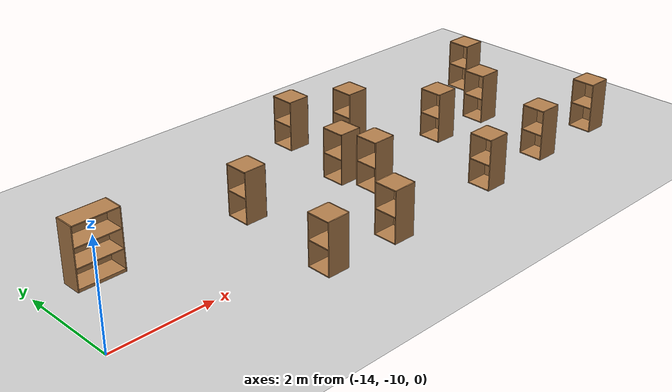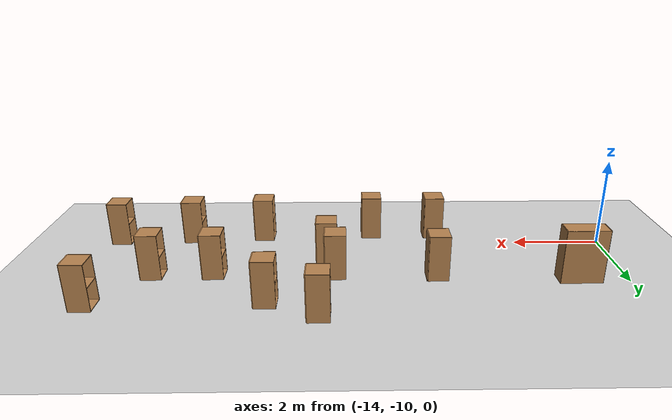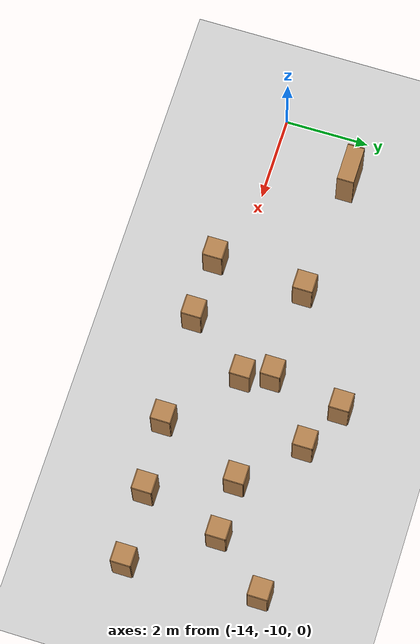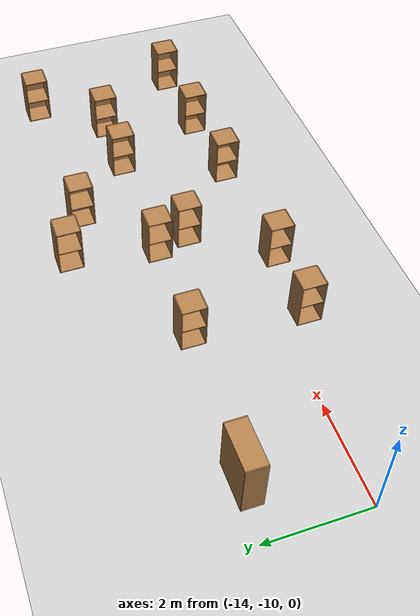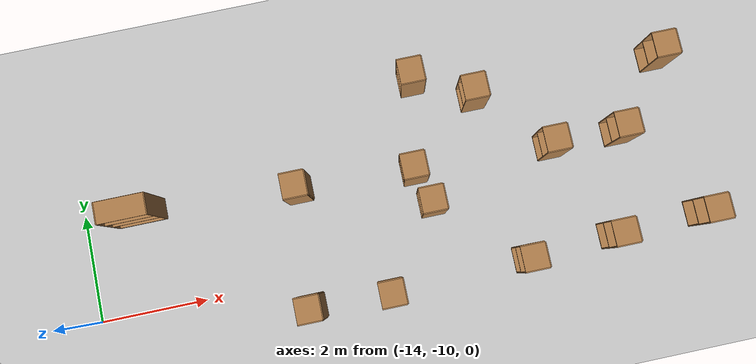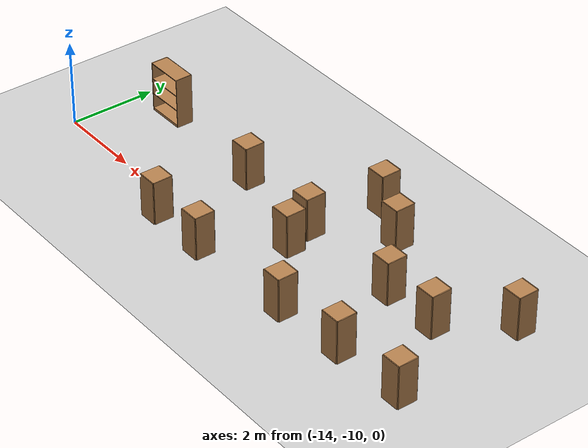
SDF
<sdf version="1.6">
 <world name="default">
  <model name="ground_plane">
   <static>1</static>
   <link name="link">
    <collision name="collision">
     <geometry><plane><normal>0 0 1</normal><size>100 100</size></plane></geometry>
     <surface><friction><ode><mu>100</mu><mu2>50</mu2></ode></friction></surface>
    </collision>
    <visual name="visual">
     <cast_shadows>0</cast_shadows>
     <geometry><plane><normal>0 0 1</normal><size>100 100</size></plane></geometry>
     <material>
      <script><uri>file://media/materials/scripts/gazebo.material</uri><name>Gazebo/Grey</name></script>
     </material>
    </visual>
   </link>
  </model>
  <model name="cabinet">
   <static>1</static>
   <link name="cabinet_bottom_plate">
    <inertial>
     <pose>0 0 -1 0 -0 0</pose>
     <inertia><ixx>2.05</ixx><ixy>0</ixy><ixz>0</ixz><iyy>2.05</iyy><iyz>0</iyz><izz>2.05</izz></inertia>
     <mass>25</mass>
    </inertial>
    <collision name="cabinet_bottom_plate_geom">
     <pose>0 0 0.01 0 -0 0</pose>
     <geometry><box><size>0.45 0.45 0.02</size></box></geometry>
    </collision>
    <visual name="cabinet_bottom_plate_geom_visual">
     <pose>0 0 0.01 0 -0 0</pose>
     <geometry><box><size>0.45 0.45 0.02</size></box></geometry>
     <material>
      <script><uri>file://media/materials/scripts/gazebo.material</uri><name>Gazebo/Wood</name></script>
     </material>
    </visual>
    <collision name="cabinet_bottom_plate_geom_cabinet_back_plate">
     <pose>0.235 0 0.51 0 -0 0</pose>
     <geometry><box><size>0.02 0.45 1.02</size></box></geometry>
    </collision>
    <visual name="cabinet_bottom_plate_geom_cabinet_back_plate_visual">
     <pose>0.235 0 0.51 0 -0 0</pose>
     <geometry><box><size>0.02 0.45 1.02</size></box></geometry>
     <material>
      <script><uri>file://media/materials/scripts/gazebo.material</uri><name>Gazebo/Wood</name></script>
     </material>
    </visual>
    <collision name="cabinet_bottom_plate_geom_cabinet_left_plate">
     <pose>0 0.235 0.51 0 -0 0</pose>
     <geometry><box><size>0.45 0.02 1.02</size></box></geometry>
    </collision>
    <visual name="cabinet_bottom_plate_geom_cabinet_left_plate_visual">
     <pose>0 0.235 0.51 0 -0 0</pose>
     <geometry><box><size>0.45 0.02 1.02</size></box></geometry>
     <material>
      <script><uri>file://media/materials/scripts/gazebo.material</uri><name>Gazebo/Wood</name></script>
     </material>
    </visual>
    <collision name="cabinet_bottom_plate_geom_cabinet_middle_plate">
     <pose>0 0 0.51 0 -0 0</pose>
     <geometry><box><size>0.45 0.45 0.02</size></box></geometry>
    </collision>
    <visual name="cabinet_bottom_plate_geom_cabinet_middle_plate_visual">
     <pose>0 0 0.51 0 -0 0</pose>
     <geometry><box><size>0.45 0.45 0.02</size></box></geometry>
     <material>
      <script><uri>file://media/materials/scripts/gazebo.material</uri><name>Gazebo/Wood</name></script>
     </material>
    </visual>
    <collision name="cabinet_bottom_plate_geom_cabinet_right_plate">
     <pose>0 -0.235 0.51 0 -0 0</pose>
     <geometry><box><size>0.45 0.02 1.02</size></box></geometry>
    </collision>
    <visual name="cabinet_bottom_plate_geom_cabinet_right_plate_visual">
     <pose>0 -0.235 0.51 0 -0 0</pose>
     <geometry><box><size>0.45 0.02 1.02</size></box></geometry>
     <material>
      <script><uri>file://media/materials/scripts/gazebo.material</uri><name>Gazebo/Wood</name></script>
     </material>
    </visual>
    <collision name="cabinet_bottom_plate_geom_cabinet_top_plate">
     <pose>0 0 1.01 0 -0 0</pose>
     <geometry><box><size>0.45 0.45 0.02</size></box></geometry>
    </collision>
    <visual name="cabinet_bottom_plate_geom_cabinet_top_plate_visual">
     <pose>0 0 1.01 0 -0 0</pose>
     <geometry><box><size>0.45 0.45 0.02</size></box></geometry>
     <material>
      <script><uri>file://media/materials/scripts/gazebo.material</uri><name>Gazebo/Wood</name></script>
     </material>
    </visual>
   </link>
   <pose>-10.0798 -10.5343 0 0 -0 0</pose>
  </model>
  <model name="cabinet_0">
   <static>1</static>
   <link name="cabinet_bottom_plate">
    <inertial>
     <pose>0 0 -1 0 -0 0</pose>
     <inertia><ixx>2.05</ixx><ixy>0</ixy><ixz>0</ixz><iyy>2.05</iyy><iyz>0</iyz><izz>2.05</izz></inertia>
     <mass>25</mass>
    </inertial>
    <collision name="cabinet_bottom_plate_geom">
     <pose>0 0 0.01 0 -0 0</pose>
     <geometry><box><size>0.45 0.45 0.02</size></box></geometry>
    </collision>
    <visual name="cabinet_bottom_plate_geom_visual">
     <pose>0 0 0.01 0 -0 0</pose>
     <geometry><box><size>0.45 0.45 0.02</size></box></geometry>
     <material>
      <script><uri>file://media/materials/scripts/gazebo.material</uri><name>Gazebo/Wood</name></script>
     </material>
    </visual>
    <collision name="cabinet_bottom_plate_geom_cabinet_back_plate">
     <pose>0.235 0 0.51 0 -0 0</pose>
     <geometry><box><size>0.02 0.45 1.02</size></box></geometry>
    </collision>
    <visual name="cabinet_bottom_plate_geom_cabinet_back_plate_visual">
     <pose>0.235 0 0.51 0 -0 0</pose>
     <geometry><box><size>0.02 0.45 1.02</size></box></geometry>
     <material>
      <script><uri>file://media/materials/scripts/gazebo.material</uri><name>Gazebo/Wood</name></script>
     </material>
    </visual>
    <collision name="cabinet_bottom_plate_geom_cabinet_left_plate">
     <pose>0 0.235 0.51 0 -0 0</pose>
     <geometry><box><size>0.45 0.02 1.02</size></box></geometry>
    </collision>
    <visual name="cabinet_bottom_plate_geom_cabinet_left_plate_visual">
     <pose>0 0.235 0.51 0 -0 0</pose>
     <geometry><box><size>0.45 0.02 1.02</size></box></geometry>
     <material>
      <script><uri>file://media/materials/scripts/gazebo.material</uri><name>Gazebo/Wood</name></script>
     </material>
    </visual>
    <collision name="cabinet_bottom_plate_geom_cabinet_middle_plate">
     <pose>0 0 0.51 0 -0 0</pose>
     <geometry><box><size>0.45 0.45 0.02</size></box></geometry>
    </collision>
    <visual name="cabinet_bottom_plate_geom_cabinet_middle_plate_visual">
     <pose>0 0 0.51 0 -0 0</pose>
     <geometry><box><size>0.45 0.45 0.02</size></box></geometry>
     <material>
      <script><uri>file://media/materials/scripts/gazebo.material</uri><name>Gazebo/Wood</name></script>
     </material>
    </visual>
    <collision name="cabinet_bottom_plate_geom_cabinet_right_plate">
     <pose>0 -0.235 0.51 0 -0 0</pose>
     <geometry><box><size>0.45 0.02 1.02</size></box></geometry>
    </collision>
    <visual name="cabinet_bottom_plate_geom_cabinet_right_plate_visual">
     <pose>0 -0.235 0.51 0 -0 0</pose>
     <geometry><box><size>0.45 0.02 1.02</size></box></geometry>
     <material>
      <script><uri>file://media/materials/scripts/gazebo.material</uri><name>Gazebo/Wood</name></script>
     </material>
    </visual>
    <collision name="cabinet_bottom_plate_geom_cabinet_top_plate">
     <pose>0 0 1.01 0 -0 0</pose>
     <geometry><box><size>0.45 0.45 0.02</size></box></geometry>
    </collision>
    <visual name="cabinet_bottom_plate_geom_cabinet_top_plate_visual">
     <pose>0 0 1.01 0 -0 0</pose>
     <geometry><box><size>0.45 0.45 0.02</size></box></geometry>
     <material>
      <script><uri>file://media/materials/scripts/gazebo.material</uri><name>Gazebo/Wood</name></script>
     </material>
    </visual>
   </link>
   <pose>-8.57907 -10.5675 0 0 -0 0</pose>
  </model>
  <model name="cabinet_1">
   <static>1</static>
   <link name="cabinet_bottom_plate">
    <inertial>
     <pose>0 0 -1 0 -0 0</pose>
     <inertia><ixx>2.05</ixx><ixy>0</ixy><ixz>0</ixz><iyy>2.05</iyy><iyz>0</iyz><izz>2.05</izz></inertia>
     <mass>25</mass>
    </inertial>
    <collision name="cabinet_bottom_plate_geom">
     <pose>0 0 0.01 0 -0 0</pose>
     <geometry><box><size>0.45 0.45 0.02</size></box></geometry>
    </collision>
    <visual name="cabinet_bottom_plate_geom_visual">
     <pose>0 0 0.01 0 -0 0</pose>
     <geometry><box><size>0.45 0.45 0.02</size></box></geometry>
     <material>
      <script><uri>file://media/materials/scripts/gazebo.material</uri><name>Gazebo/Wood</name></script>
     </material>
    </visual>
    <collision name="cabinet_bottom_plate_geom_cabinet_back_plate">
     <pose>0.235 0 0.51 0 -0 0</pose>
     <geometry><box><size>0.02 0.45 1.02</size></box></geometry>
    </collision>
    <visual name="cabinet_bottom_plate_geom_cabinet_back_plate_visual">
     <pose>0.235 0 0.51 0 -0 0</pose>
     <geometry><box><size>0.02 0.45 1.02</size></box></geometry>
     <material>
      <script><uri>file://media/materials/scripts/gazebo.material</uri><name>Gazebo/Wood</name></script>
     </material>
    </visual>
    <collision name="cabinet_bottom_plate_geom_cabinet_left_plate">
     <pose>0 0.235 0.51 0 -0 0</pose>
     <geometry><box><size>0.45 0.02 1.02</size></box></geometry>
    </collision>
    <visual name="cabinet_bottom_plate_geom_cabinet_left_plate_visual">
     <pose>0 0.235 0.51 0 -0 0</pose>
     <geometry><box><size>0.45 0.02 1.02</size></box></geometry>
     <material>
      <script><uri>file://media/materials/scripts/gazebo.material</uri><name>Gazebo/Wood</name></script>
     </material>
    </visual>
    <collision name="cabinet_bottom_plate_geom_cabinet_middle_plate">
     <pose>0 0 0.51 0 -0 0</pose>
     <geometry><box><size>0.45 0.45 0.02</size></box></geometry>
    </collision>
    <visual name="cabinet_bottom_plate_geom_cabinet_middle_plate_visual">
     <pose>0 0 0.51 0 -0 0</pose>
     <geometry><box><size>0.45 0.45 0.02</size></box></geometry>
     <material>
      <script><uri>file://media/materials/scripts/gazebo.material</uri><name>Gazebo/Wood</name></script>
     </material>
    </visual>
    <collision name="cabinet_bottom_plate_geom_cabinet_right_plate">
     <pose>0 -0.235 0.51 0 -0 0</pose>
     <geometry><box><size>0.45 0.02 1.02</size></box></geometry>
    </collision>
    <visual name="cabinet_bottom_plate_geom_cabinet_right_plate_visual">
     <pose>0 -0.235 0.51 0 -0 0</pose>
     <geometry><box><size>0.45 0.02 1.02</size></box></geometry>
     <material>
      <script><uri>file://media/materials/scripts/gazebo.material</uri><name>Gazebo/Wood</name></script>
     </material>
    </visual>
    <collision name="cabinet_bottom_plate_geom_cabinet_top_plate">
     <pose>0 0 1.01 0 -0 0</pose>
     <geometry><box><size>0.45 0.45 0.02</size></box></geometry>
    </collision>
    <visual name="cabinet_bottom_plate_geom_cabinet_top_plate_visual">
     <pose>0 0 1.01 0 -0 0</pose>
     <geometry><box><size>0.45 0.45 0.02</size></box></geometry>
     <material>
      <script><uri>file://media/materials/scripts/gazebo.material</uri><name>Gazebo/Wood</name></script>
     </material>
    </visual>
   </link>
   <pose>-7.53235 -9.08887 0 0 -0 0</pose>
  </model>
  <model name="cabinet_2">
   <static>1</static>
   <link name="cabinet_bottom_plate">
    <inertial>
     <pose>0 0 -1 0 -0 0</pose>
     <inertia><ixx>2.05</ixx><ixy>0</ixy><ixz>0</ixz><iyy>2.05</iyy><iyz>0</iyz><izz>2.05</izz></inertia>
     <mass>25</mass>
    </inertial>
    <collision name="cabinet_bottom_plate_geom">
     <pose>0 0 0.01 0 -0 0</pose>
     <geometry><box><size>0.45 0.45 0.02</size></box></geometry>
    </collision>
    <visual name="cabinet_bottom_plate_geom_visual">
     <pose>0 0 0.01 0 -0 0</pose>
     <geometry><box><size>0.45 0.45 0.02</size></box></geometry>
     <material>
      <script><uri>file://media/materials/scripts/gazebo.material</uri><name>Gazebo/Wood</name></script>
     </material>
    </visual>
    <collision name="cabinet_bottom_plate_geom_cabinet_back_plate">
     <pose>0.235 0 0.51 0 -0 0</pose>
     <geometry><box><size>0.02 0.45 1.02</size></box></geometry>
    </collision>
    <visual name="cabinet_bottom_plate_geom_cabinet_back_plate_visual">
     <pose>0.235 0 0.51 0 -0 0</pose>
     <geometry><box><size>0.02 0.45 1.02</size></box></geometry>
     <material>
      <script><uri>file://media/materials/scripts/gazebo.material</uri><name>Gazebo/Wood</name></script>
     </material>
    </visual>
    <collision name="cabinet_bottom_plate_geom_cabinet_left_plate">
     <pose>0 0.235 0.51 0 -0 0</pose>
     <geometry><box><size>0.45 0.02 1.02</size></box></geometry>
    </collision>
    <visual name="cabinet_bottom_plate_geom_cabinet_left_plate_visual">
     <pose>0 0.235 0.51 0 -0 0</pose>
     <geometry><box><size>0.45 0.02 1.02</size></box></geometry>
     <material>
      <script><uri>file://media/materials/scripts/gazebo.material</uri><name>Gazebo/Wood</name></script>
     </material>
    </visual>
    <collision name="cabinet_bottom_plate_geom_cabinet_middle_plate">
     <pose>0 0 0.51 0 -0 0</pose>
     <geometry><box><size>0.45 0.45 0.02</size></box></geometry>
    </collision>
    <visual name="cabinet_bottom_plate_geom_cabinet_middle_plate_visual">
     <pose>0 0 0.51 0 -0 0</pose>
     <geometry><box><size>0.45 0.45 0.02</size></box></geometry>
     <material>
      <script><uri>file://media/materials/scripts/gazebo.material</uri><name>Gazebo/Wood</name></script>
     </material>
    </visual>
    <collision name="cabinet_bottom_plate_geom_cabinet_right_plate">
     <pose>0 -0.235 0.51 0 -0 0</pose>
     <geometry><box><size>0.45 0.02 1.02</size></box></geometry>
    </collision>
    <visual name="cabinet_bottom_plate_geom_cabinet_right_plate_visual">
     <pose>0 -0.235 0.51 0 -0 0</pose>
     <geometry><box><size>0.45 0.02 1.02</size></box></geometry>
     <material>
      <script><uri>file://media/materials/scripts/gazebo.material</uri><name>Gazebo/Wood</name></script>
     </material>
    </visual>
    <collision name="cabinet_bottom_plate_geom_cabinet_top_plate">
     <pose>0 0 1.01 0 -0 0</pose>
     <geometry><box><size>0.45 0.45 0.02</size></box></geometry>
    </collision>
    <visual name="cabinet_bottom_plate_geom_cabinet_top_plate_visual">
     <pose>0 0 1.01 0 -0 0</pose>
     <geometry><box><size>0.45 0.45 0.02</size></box></geometry>
     <material>
      <script><uri>file://media/materials/scripts/gazebo.material</uri><name>Gazebo/Wood</name></script>
     </material>
    </visual>
   </link>
   <pose>-5.99781 -10.4652 0 0 -0 0</pose>
  </model>
  <model name="cabinet_3">
   <static>1</static>
   <link name="cabinet_bottom_plate">
    <inertial>
     <pose>0 0 -1 0 -0 0</pose>
     <inertia><ixx>2.05</ixx><ixy>0</ixy><ixz>0</ixz><iyy>2.05</iyy><iyz>0</iyz><izz>2.05</izz></inertia>
     <mass>25</mass>
    </inertial>
    <collision name="cabinet_bottom_plate_geom">
     <pose>0 0 0.01 0 -0 0</pose>
     <geometry><box><size>0.45 0.45 0.02</size></box></geometry>
    </collision>
    <visual name="cabinet_bottom_plate_geom_visual">
     <pose>0 0 0.01 0 -0 0</pose>
     <geometry><box><size>0.45 0.45 0.02</size></box></geometry>
     <material>
      <script><uri>file://media/materials/scripts/gazebo.material</uri><name>Gazebo/Wood</name></script>
     </material>
    </visual>
    <collision name="cabinet_bottom_plate_geom_cabinet_back_plate">
     <pose>0.235 0 0.51 0 -0 0</pose>
     <geometry><box><size>0.02 0.45 1.02</size></box></geometry>
    </collision>
    <visual name="cabinet_bottom_plate_geom_cabinet_back_plate_visual">
     <pose>0.235 0 0.51 0 -0 0</pose>
     <geometry><box><size>0.02 0.45 1.02</size></box></geometry>
     <material>
      <script><uri>file://media/materials/scripts/gazebo.material</uri><name>Gazebo/Wood</name></script>
     </material>
    </visual>
    <collision name="cabinet_bottom_plate_geom_cabinet_left_plate">
     <pose>0 0.235 0.51 0 -0 0</pose>
     <geometry><box><size>0.45 0.02 1.02</size></box></geometry>
    </collision>
    <visual name="cabinet_bottom_plate_geom_cabinet_left_plate_visual">
     <pose>0 0.235 0.51 0 -0 0</pose>
     <geometry><box><size>0.45 0.02 1.02</size></box></geometry>
     <material>
      <script><uri>file://media/materials/scripts/gazebo.material</uri><name>Gazebo/Wood</name></script>
     </material>
    </visual>
    <collision name="cabinet_bottom_plate_geom_cabinet_middle_plate">
     <pose>0 0 0.51 0 -0 0</pose>
     <geometry><box><size>0.45 0.45 0.02</size></box></geometry>
    </collision>
    <visual name="cabinet_bottom_plate_geom_cabinet_middle_plate_visual">
     <pose>0 0 0.51 0 -0 0</pose>
     <geometry><box><size>0.45 0.45 0.02</size></box></geometry>
     <material>
      <script><uri>file://media/materials/scripts/gazebo.material</uri><name>Gazebo/Wood</name></script>
     </material>
    </visual>
    <collision name="cabinet_bottom_plate_geom_cabinet_right_plate">
     <pose>0 -0.235 0.51 0 -0 0</pose>
     <geometry><box><size>0.45 0.02 1.02</size></box></geometry>
    </collision>
    <visual name="cabinet_bottom_plate_geom_cabinet_right_plate_visual">
     <pose>0 -0.235 0.51 0 -0 0</pose>
     <geometry><box><size>0.45 0.02 1.02</size></box></geometry>
     <material>
      <script><uri>file://media/materials/scripts/gazebo.material</uri><name>Gazebo/Wood</name></script>
     </material>
    </visual>
    <collision name="cabinet_bottom_plate_geom_cabinet_top_plate">
     <pose>0 0 1.01 0 -0 0</pose>
     <geometry><box><size>0.45 0.45 0.02</size></box></geometry>
    </collision>
    <visual name="cabinet_bottom_plate_geom_cabinet_top_plate_visual">
     <pose>0 0 1.01 0 -0 0</pose>
     <geometry><box><size>0.45 0.45 0.02</size></box></geometry>
     <material>
      <script><uri>file://media/materials/scripts/gazebo.material</uri><name>Gazebo/Wood</name></script>
     </material>
    </visual>
   </link>
   <pose>-4.32371 -10.3615 0 0 -0 0</pose>
  </model>
  <model name="cabinet_4">
   <static>1</static>
   <link name="cabinet_bottom_plate">
    <inertial>
     <pose>0 0 -1 0 -0 0</pose>
     <inertia><ixx>2.05</ixx><ixy>0</ixy><ixz>0</ixz><iyy>2.05</iyy><iyz>0</iyz><izz>2.05</izz></inertia>
     <mass>25</mass>
    </inertial>
    <collision name="cabinet_bottom_plate_geom">
     <pose>0 0 0.01 0 -0 0</pose>
     <geometry><box><size>0.45 0.45 0.02</size></box></geometry>
    </collision>
    <visual name="cabinet_bottom_plate_geom_visual">
     <pose>0 0 0.01 0 -0 0</pose>
     <geometry><box><size>0.45 0.45 0.02</size></box></geometry>
     <material>
      <script><uri>file://media/materials/scripts/gazebo.material</uri><name>Gazebo/Wood</name></script>
     </material>
    </visual>
    <collision name="cabinet_bottom_plate_geom_cabinet_back_plate">
     <pose>0.235 0 0.51 0 -0 0</pose>
     <geometry><box><size>0.02 0.45 1.02</size></box></geometry>
    </collision>
    <visual name="cabinet_bottom_plate_geom_cabinet_back_plate_visual">
     <pose>0.235 0 0.51 0 -0 0</pose>
     <geometry><box><size>0.02 0.45 1.02</size></box></geometry>
     <material>
      <script><uri>file://media/materials/scripts/gazebo.material</uri><name>Gazebo/Wood</name></script>
     </material>
    </visual>
    <collision name="cabinet_bottom_plate_geom_cabinet_left_plate">
     <pose>0 0.235 0.51 0 -0 0</pose>
     <geometry><box><size>0.45 0.02 1.02</size></box></geometry>
    </collision>
    <visual name="cabinet_bottom_plate_geom_cabinet_left_plate_visual">
     <pose>0 0.235 0.51 0 -0 0</pose>
     <geometry><box><size>0.45 0.02 1.02</size></box></geometry>
     <material>
      <script><uri>file://media/materials/scripts/gazebo.material</uri><name>Gazebo/Wood</name></script>
     </material>
    </visual>
    <collision name="cabinet_bottom_plate_geom_cabinet_middle_plate">
     <pose>0 0 0.51 0 -0 0</pose>
     <geometry><box><size>0.45 0.45 0.02</size></box></geometry>
    </collision>
    <visual name="cabinet_bottom_plate_geom_cabinet_middle_plate_visual">
     <pose>0 0 0.51 0 -0 0</pose>
     <geometry><box><size>0.45 0.45 0.02</size></box></geometry>
     <material>
      <script><uri>file://media/materials/scripts/gazebo.material</uri><name>Gazebo/Wood</name></script>
     </material>
    </visual>
    <collision name="cabinet_bottom_plate_geom_cabinet_right_plate">
     <pose>0 -0.235 0.51 0 -0 0</pose>
     <geometry><box><size>0.45 0.02 1.02</size></box></geometry>
    </collision>
    <visual name="cabinet_bottom_plate_geom_cabinet_right_plate_visual">
     <pose>0 -0.235 0.51 0 -0 0</pose>
     <geometry><box><size>0.45 0.02 1.02</size></box></geometry>
     <material>
      <script><uri>file://media/materials/scripts/gazebo.material</uri><name>Gazebo/Wood</name></script>
     </material>
    </visual>
    <collision name="cabinet_bottom_plate_geom_cabinet_top_plate">
     <pose>0 0 1.01 0 -0 0</pose>
     <geometry><box><size>0.45 0.45 0.02</size></box></geometry>
    </collision>
    <visual name="cabinet_bottom_plate_geom_cabinet_top_plate_visual">
     <pose>0 0 1.01 0 -0 0</pose>
     <geometry><box><size>0.45 0.45 0.02</size></box></geometry>
     <material>
      <script><uri>file://media/materials/scripts/gazebo.material</uri><name>Gazebo/Wood</name></script>
     </material>
    </visual>
   </link>
   <pose>-2.61379 -10.2875 0 0 -0 0</pose>
  </model>
  <model name="cabinet_10">
   <static>1</static>
   <link name="cabinet_bottom_plate">
    <inertial>
     <pose>0 0 -1 0 -0 0</pose>
     <inertia><ixx>2.05</ixx><ixy>0</ixy><ixz>0</ixz><iyy>2.05</iyy><iyz>0</iyz><izz>2.05</izz></inertia>
     <mass>25</mass>
    </inertial>
    <collision name="cabinet_bottom_plate_geom">
     <pose>0 0 0.01 0 -0 0</pose>
     <geometry><box><size>0.45 0.45 0.02</size></box></geometry>
    </collision>
    <visual name="cabinet_bottom_plate_geom_visual">
     <pose>0 0 0.01 0 -0 0</pose>
     <geometry><box><size>0.45 0.45 0.02</size></box></geometry>
     <material>
      <script><uri>file://media/materials/scripts/gazebo.material</uri><name>Gazebo/Wood</name></script>
     </material>
    </visual>
    <collision name="cabinet_bottom_plate_geom_cabinet_back_plate">
     <pose>0.235 0 0.51 0 -0 0</pose>
     <geometry><box><size>0.02 0.45 1.02</size></box></geometry>
    </collision>
    <visual name="cabinet_bottom_plate_geom_cabinet_back_plate_visual">
     <pose>0.235 0 0.51 0 -0 0</pose>
     <geometry><box><size>0.02 0.45 1.02</size></box></geometry>
     <material>
      <script><uri>file://media/materials/scripts/gazebo.material</uri><name>Gazebo/Wood</name></script>
     </material>
    </visual>
    <collision name="cabinet_bottom_plate_geom_cabinet_left_plate">
     <pose>0 0.235 0.51 0 -0 0</pose>
     <geometry><box><size>0.45 0.02 1.02</size></box></geometry>
    </collision>
    <visual name="cabinet_bottom_plate_geom_cabinet_left_plate_visual">
     <pose>0 0.235 0.51 0 -0 0</pose>
     <geometry><box><size>0.45 0.02 1.02</size></box></geometry>
     <material>
      <script><uri>file://media/materials/scripts/gazebo.material</uri><name>Gazebo/Wood</name></script>
     </material>
    </visual>
    <collision name="cabinet_bottom_plate_geom_cabinet_middle_plate">
     <pose>0 0 0.51 0 -0 0</pose>
     <geometry><box><size>0.45 0.45 0.02</size></box></geometry>
    </collision>
    <visual name="cabinet_bottom_plate_geom_cabinet_middle_plate_visual">
     <pose>0 0 0.51 0 -0 0</pose>
     <geometry><box><size>0.45 0.45 0.02</size></box></geometry>
     <material>
      <script><uri>file://media/materials/scripts/gazebo.material</uri><name>Gazebo/Wood</name></script>
     </material>
    </visual>
    <collision name="cabinet_bottom_plate_geom_cabinet_right_plate">
     <pose>0 -0.235 0.51 0 -0 0</pose>
     <geometry><box><size>0.45 0.02 1.02</size></box></geometry>
    </collision>
    <visual name="cabinet_bottom_plate_geom_cabinet_right_plate_visual">
     <pose>0 -0.235 0.51 0 -0 0</pose>
     <geometry><box><size>0.45 0.02 1.02</size></box></geometry>
     <material>
      <script><uri>file://media/materials/scripts/gazebo.material</uri><name>Gazebo/Wood</name></script>
     </material>
    </visual>
    <collision name="cabinet_bottom_plate_geom_cabinet_top_plate">
     <pose>0 0 1.01 0 -0 0</pose>
     <geometry><box><size>0.45 0.45 0.02</size></box></geometry>
    </collision>
    <visual name="cabinet_bottom_plate_geom_cabinet_top_plate_visual">
     <pose>0 0 1.01 0 -0 0</pose>
     <geometry><box><size>0.45 0.45 0.02</size></box></geometry>
     <material>
      <script><uri>file://media/materials/scripts/gazebo.material</uri><name>Gazebo/Wood</name></script>
     </material>
    </visual>
   </link>
   <pose>-9.91816 -8.32824 0 0 -0 0</pose>
  </model>
  <model name="cabinet_11">
   <static>1</static>
   <link name="cabinet_bottom_plate">
    <inertial>
     <pose>0 0 -1 0 -0 0</pose>
     <inertia><ixx>2.05</ixx><ixy>0</ixy><ixz>0</ixz><iyy>2.05</iyy><iyz>0</iyz><izz>2.05</izz></inertia>
     <mass>25</mass>
    </inertial>
    <collision name="cabinet_bottom_plate_geom">
     <pose>0 0 0.01 0 -0 0</pose>
     <geometry><box><size>0.45 0.45 0.02</size></box></geometry>
    </collision>
    <visual name="cabinet_bottom_plate_geom_visual">
     <pose>0 0 0.01 0 -0 0</pose>
     <geometry><box><size>0.45 0.45 0.02</size></box></geometry>
     <material>
      <script><uri>file://media/materials/scripts/gazebo.material</uri><name>Gazebo/Wood</name></script>
     </material>
    </visual>
    <collision name="cabinet_bottom_plate_geom_cabinet_back_plate">
     <pose>0.235 0 0.51 0 -0 0</pose>
     <geometry><box><size>0.02 0.45 1.02</size></box></geometry>
    </collision>
    <visual name="cabinet_bottom_plate_geom_cabinet_back_plate_visual">
     <pose>0.235 0 0.51 0 -0 0</pose>
     <geometry><box><size>0.02 0.45 1.02</size></box></geometry>
     <material>
      <script><uri>file://media/materials/scripts/gazebo.material</uri><name>Gazebo/Wood</name></script>
     </material>
    </visual>
    <collision name="cabinet_bottom_plate_geom_cabinet_left_plate">
     <pose>0 0.235 0.51 0 -0 0</pose>
     <geometry><box><size>0.45 0.02 1.02</size></box></geometry>
    </collision>
    <visual name="cabinet_bottom_plate_geom_cabinet_left_plate_visual">
     <pose>0 0.235 0.51 0 -0 0</pose>
     <geometry><box><size>0.45 0.02 1.02</size></box></geometry>
     <material>
      <script><uri>file://media/materials/scripts/gazebo.material</uri><name>Gazebo/Wood</name></script>
     </material>
    </visual>
    <collision name="cabinet_bottom_plate_geom_cabinet_middle_plate">
     <pose>0 0 0.51 0 -0 0</pose>
     <geometry><box><size>0.45 0.45 0.02</size></box></geometry>
    </collision>
    <visual name="cabinet_bottom_plate_geom_cabinet_middle_plate_visual">
     <pose>0 0 0.51 0 -0 0</pose>
     <geometry><box><size>0.45 0.45 0.02</size></box></geometry>
     <material>
      <script><uri>file://media/materials/scripts/gazebo.material</uri><name>Gazebo/Wood</name></script>
     </material>
    </visual>
    <collision name="cabinet_bottom_plate_geom_cabinet_right_plate">
     <pose>0 -0.235 0.51 0 -0 0</pose>
     <geometry><box><size>0.45 0.02 1.02</size></box></geometry>
    </collision>
    <visual name="cabinet_bottom_plate_geom_cabinet_right_plate_visual">
     <pose>0 -0.235 0.51 0 -0 0</pose>
     <geometry><box><size>0.45 0.02 1.02</size></box></geometry>
     <material>
      <script><uri>file://media/materials/scripts/gazebo.material</uri><name>Gazebo/Wood</name></script>
     </material>
    </visual>
    <collision name="cabinet_bottom_plate_geom_cabinet_top_plate">
     <pose>0 0 1.01 0 -0 0</pose>
     <geometry><box><size>0.45 0.45 0.02</size></box></geometry>
    </collision>
    <visual name="cabinet_bottom_plate_geom_cabinet_top_plate_visual">
     <pose>0 0 1.01 0 -0 0</pose>
     <geometry><box><size>0.45 0.45 0.02</size></box></geometry>
     <material>
      <script><uri>file://media/materials/scripts/gazebo.material</uri><name>Gazebo/Wood</name></script>
     </material>
    </visual>
   </link>
   <pose>-7.73421 -8.42814 0 0 -0 0</pose>
  </model>
  <model name="cabinet_12">
   <static>1</static>
   <link name="cabinet_bottom_plate">
    <inertial>
     <pose>0 0 -1 0 -0 0</pose>
     <inertia><ixx>2.05</ixx><ixy>0</ixy><ixz>0</ixz><iyy>2.05</iyy><iyz>0</iyz><izz>2.05</izz></inertia>
     <mass>25</mass>
    </inertial>
    <collision name="cabinet_bottom_plate_geom">
     <pose>0 0 0.01 0 -0 0</pose>
     <geometry><box><size>0.45 0.45 0.02</size></box></geometry>
    </collision>
    <visual name="cabinet_bottom_plate_geom_visual">
     <pose>0 0 0.01 0 -0 0</pose>
     <geometry><box><size>0.45 0.45 0.02</size></box></geometry>
     <material>
      <script><uri>file://media/materials/scripts/gazebo.material</uri><name>Gazebo/Wood</name></script>
     </material>
    </visual>
    <collision name="cabinet_bottom_plate_geom_cabinet_back_plate">
     <pose>0.235 0 0.51 0 -0 0</pose>
     <geometry><box><size>0.02 0.45 1.02</size></box></geometry>
    </collision>
    <visual name="cabinet_bottom_plate_geom_cabinet_back_plate_visual">
     <pose>0.235 0 0.51 0 -0 0</pose>
     <geometry><box><size>0.02 0.45 1.02</size></box></geometry>
     <material>
      <script><uri>file://media/materials/scripts/gazebo.material</uri><name>Gazebo/Wood</name></script>
     </material>
    </visual>
    <collision name="cabinet_bottom_plate_geom_cabinet_left_plate">
     <pose>0 0.235 0.51 0 -0 0</pose>
     <geometry><box><size>0.45 0.02 1.02</size></box></geometry>
    </collision>
    <visual name="cabinet_bottom_plate_geom_cabinet_left_plate_visual">
     <pose>0 0.235 0.51 0 -0 0</pose>
     <geometry><box><size>0.45 0.02 1.02</size></box></geometry>
     <material>
      <script><uri>file://media/materials/scripts/gazebo.material</uri><name>Gazebo/Wood</name></script>
     </material>
    </visual>
    <collision name="cabinet_bottom_plate_geom_cabinet_middle_plate">
     <pose>0 0 0.51 0 -0 0</pose>
     <geometry><box><size>0.45 0.45 0.02</size></box></geometry>
    </collision>
    <visual name="cabinet_bottom_plate_geom_cabinet_middle_plate_visual">
     <pose>0 0 0.51 0 -0 0</pose>
     <geometry><box><size>0.45 0.45 0.02</size></box></geometry>
     <material>
      <script><uri>file://media/materials/scripts/gazebo.material</uri><name>Gazebo/Wood</name></script>
     </material>
    </visual>
    <collision name="cabinet_bottom_plate_geom_cabinet_right_plate">
     <pose>0 -0.235 0.51 0 -0 0</pose>
     <geometry><box><size>0.45 0.02 1.02</size></box></geometry>
    </collision>
    <visual name="cabinet_bottom_plate_geom_cabinet_right_plate_visual">
     <pose>0 -0.235 0.51 0 -0 0</pose>
     <geometry><box><size>0.45 0.02 1.02</size></box></geometry>
     <material>
      <script><uri>file://media/materials/scripts/gazebo.material</uri><name>Gazebo/Wood</name></script>
     </material>
    </visual>
    <collision name="cabinet_bottom_plate_geom_cabinet_top_plate">
     <pose>0 0 1.01 0 -0 0</pose>
     <geometry><box><size>0.45 0.45 0.02</size></box></geometry>
    </collision>
    <visual name="cabinet_bottom_plate_geom_cabinet_top_plate_visual">
     <pose>0 0 1.01 0 -0 0</pose>
     <geometry><box><size>0.45 0.45 0.02</size></box></geometry>
     <material>
      <script><uri>file://media/materials/scripts/gazebo.material</uri><name>Gazebo/Wood</name></script>
     </material>
    </visual>
   </link>
   <pose>-6.35477 -7.24797 0 0 -0 0</pose>
  </model>
  <model name="cabinet_13">
   <static>1</static>
   <link name="cabinet_bottom_plate">
    <inertial>
     <pose>0 0 -1 0 -0 0</pose>
     <inertia><ixx>2.05</ixx><ixy>0</ixy><ixz>0</ixz><iyy>2.05</iyy><iyz>0</iyz><izz>2.05</izz></inertia>
     <mass>25</mass>
    </inertial>
    <collision name="cabinet_bottom_plate_geom">
     <pose>0 0 0.01 0 -0 0</pose>
     <geometry><box><size>0.45 0.45 0.02</size></box></geometry>
    </collision>
    <visual name="cabinet_bottom_plate_geom_visual">
     <pose>0 0 0.01 0 -0 0</pose>
     <geometry><box><size>0.45 0.45 0.02</size></box></geometry>
     <material>
      <script><uri>file://media/materials/scripts/gazebo.material</uri><name>Gazebo/Wood</name></script>
     </material>
    </visual>
    <collision name="cabinet_bottom_plate_geom_cabinet_back_plate">
     <pose>0.235 0 0.51 0 -0 0</pose>
     <geometry><box><size>0.02 0.45 1.02</size></box></geometry>
    </collision>
    <visual name="cabinet_bottom_plate_geom_cabinet_back_plate_visual">
     <pose>0.235 0 0.51 0 -0 0</pose>
     <geometry><box><size>0.02 0.45 1.02</size></box></geometry>
     <material>
      <script><uri>file://media/materials/scripts/gazebo.material</uri><name>Gazebo/Wood</name></script>
     </material>
    </visual>
    <collision name="cabinet_bottom_plate_geom_cabinet_left_plate">
     <pose>0 0.235 0.51 0 -0 0</pose>
     <geometry><box><size>0.45 0.02 1.02</size></box></geometry>
    </collision>
    <visual name="cabinet_bottom_plate_geom_cabinet_left_plate_visual">
     <pose>0 0.235 0.51 0 -0 0</pose>
     <geometry><box><size>0.45 0.02 1.02</size></box></geometry>
     <material>
      <script><uri>file://media/materials/scripts/gazebo.material</uri><name>Gazebo/Wood</name></script>
     </material>
    </visual>
    <collision name="cabinet_bottom_plate_geom_cabinet_middle_plate">
     <pose>0 0 0.51 0 -0 0</pose>
     <geometry><box><size>0.45 0.45 0.02</size></box></geometry>
    </collision>
    <visual name="cabinet_bottom_plate_geom_cabinet_middle_plate_visual">
     <pose>0 0 0.51 0 -0 0</pose>
     <geometry><box><size>0.45 0.45 0.02</size></box></geometry>
     <material>
      <script><uri>file://media/materials/scripts/gazebo.material</uri><name>Gazebo/Wood</name></script>
     </material>
    </visual>
    <collision name="cabinet_bottom_plate_geom_cabinet_right_plate">
     <pose>0 -0.235 0.51 0 -0 0</pose>
     <geometry><box><size>0.45 0.02 1.02</size></box></geometry>
    </collision>
    <visual name="cabinet_bottom_plate_geom_cabinet_right_plate_visual">
     <pose>0 -0.235 0.51 0 -0 0</pose>
     <geometry><box><size>0.45 0.02 1.02</size></box></geometry>
     <material>
      <script><uri>file://media/materials/scripts/gazebo.material</uri><name>Gazebo/Wood</name></script>
     </material>
    </visual>
    <collision name="cabinet_bottom_plate_geom_cabinet_top_plate">
     <pose>0 0 1.01 0 -0 0</pose>
     <geometry><box><size>0.45 0.45 0.02</size></box></geometry>
    </collision>
    <visual name="cabinet_bottom_plate_geom_cabinet_top_plate_visual">
     <pose>0 0 1.01 0 -0 0</pose>
     <geometry><box><size>0.45 0.45 0.02</size></box></geometry>
     <material>
      <script><uri>file://media/materials/scripts/gazebo.material</uri><name>Gazebo/Wood</name></script>
     </material>
    </visual>
   </link>
   <pose>-5.1229 -8.47747 0 0 -0 0</pose>
  </model>
  <model name="cabinet_14">
   <static>1</static>
   <link name="cabinet_bottom_plate">
    <inertial>
     <pose>0 0 -1 0 -0 0</pose>
     <inertia><ixx>2.05</ixx><ixy>0</ixy><ixz>0</ixz><iyy>2.05</iyy><iyz>0</iyz><izz>2.05</izz></inertia>
     <mass>25</mass>
    </inertial>
    <collision name="cabinet_bottom_plate_geom">
     <pose>0 0 0.01 0 -0 0</pose>
     <geometry><box><size>0.45 0.45 0.02</size></box></geometry>
    </collision>
    <visual name="cabinet_bottom_plate_geom_visual">
     <pose>0 0 0.01 0 -0 0</pose>
     <geometry><box><size>0.45 0.45 0.02</size></box></geometry>
     <material>
      <script><uri>file://media/materials/scripts/gazebo.material</uri><name>Gazebo/Wood</name></script>
     </material>
    </visual>
    <collision name="cabinet_bottom_plate_geom_cabinet_back_plate">
     <pose>0.235 0 0.51 0 -0 0</pose>
     <geometry><box><size>0.02 0.45 1.02</size></box></geometry>
    </collision>
    <visual name="cabinet_bottom_plate_geom_cabinet_back_plate_visual">
     <pose>0.235 0 0.51 0 -0 0</pose>
     <geometry><box><size>0.02 0.45 1.02</size></box></geometry>
     <material>
      <script><uri>file://media/materials/scripts/gazebo.material</uri><name>Gazebo/Wood</name></script>
     </material>
    </visual>
    <collision name="cabinet_bottom_plate_geom_cabinet_left_plate">
     <pose>0 0.235 0.51 0 -0 0</pose>
     <geometry><box><size>0.45 0.02 1.02</size></box></geometry>
    </collision>
    <visual name="cabinet_bottom_plate_geom_cabinet_left_plate_visual">
     <pose>0 0.235 0.51 0 -0 0</pose>
     <geometry><box><size>0.45 0.02 1.02</size></box></geometry>
     <material>
      <script><uri>file://media/materials/scripts/gazebo.material</uri><name>Gazebo/Wood</name></script>
     </material>
    </visual>
    <collision name="cabinet_bottom_plate_geom_cabinet_middle_plate">
     <pose>0 0 0.51 0 -0 0</pose>
     <geometry><box><size>0.45 0.45 0.02</size></box></geometry>
    </collision>
    <visual name="cabinet_bottom_plate_geom_cabinet_middle_plate_visual">
     <pose>0 0 0.51 0 -0 0</pose>
     <geometry><box><size>0.45 0.45 0.02</size></box></geometry>
     <material>
      <script><uri>file://media/materials/scripts/gazebo.material</uri><name>Gazebo/Wood</name></script>
     </material>
    </visual>
    <collision name="cabinet_bottom_plate_geom_cabinet_right_plate">
     <pose>0 -0.235 0.51 0 -0 0</pose>
     <geometry><box><size>0.45 0.02 1.02</size></box></geometry>
    </collision>
    <visual name="cabinet_bottom_plate_geom_cabinet_right_plate_visual">
     <pose>0 -0.235 0.51 0 -0 0</pose>
     <geometry><box><size>0.45 0.02 1.02</size></box></geometry>
     <material>
      <script><uri>file://media/materials/scripts/gazebo.material</uri><name>Gazebo/Wood</name></script>
     </material>
    </visual>
    <collision name="cabinet_bottom_plate_geom_cabinet_top_plate">
     <pose>0 0 1.01 0 -0 0</pose>
     <geometry><box><size>0.45 0.45 0.02</size></box></geometry>
    </collision>
    <visual name="cabinet_bottom_plate_geom_cabinet_top_plate_visual">
     <pose>0 0 1.01 0 -0 0</pose>
     <geometry><box><size>0.45 0.45 0.02</size></box></geometry>
     <material>
      <script><uri>file://media/materials/scripts/gazebo.material</uri><name>Gazebo/Wood</name></script>
     </material>
    </visual>
   </link>
   <pose>-3.80345 -8.47546 0 0 -0 0</pose>
  </model>
  <model name="cabinet_15">
   <static>1</static>
   <link name="cabinet_bottom_plate">
    <inertial>
     <pose>0 0 -1 0 -0 0</pose>
     <inertia><ixx>2.05</ixx><ixy>0</ixy><ixz>0</ixz><iyy>2.05</iyy><iyz>0</iyz><izz>2.05</izz></inertia>
     <mass>25</mass>
    </inertial>
    <collision name="cabinet_bottom_plate_geom">
     <pose>0 0 0.01 0 -0 0</pose>
     <geometry><box><size>0.45 0.45 0.02</size></box></geometry>
    </collision>
    <visual name="cabinet_bottom_plate_geom_visual">
     <pose>0 0 0.01 0 -0 0</pose>
     <geometry><box><size>0.45 0.45 0.02</size></box></geometry>
     <material>
      <script><uri>file://media/materials/scripts/gazebo.material</uri><name>Gazebo/Wood</name></script>
     </material>
    </visual>
    <collision name="cabinet_bottom_plate_geom_cabinet_back_plate">
     <pose>0.235 0 0.51 0 -0 0</pose>
     <geometry><box><size>0.02 0.45 1.02</size></box></geometry>
    </collision>
    <visual name="cabinet_bottom_plate_geom_cabinet_back_plate_visual">
     <pose>0.235 0 0.51 0 -0 0</pose>
     <geometry><box><size>0.02 0.45 1.02</size></box></geometry>
     <material>
      <script><uri>file://media/materials/scripts/gazebo.material</uri><name>Gazebo/Wood</name></script>
     </material>
    </visual>
    <collision name="cabinet_bottom_plate_geom_cabinet_left_plate">
     <pose>0 0.235 0.51 0 -0 0</pose>
     <geometry><box><size>0.45 0.02 1.02</size></box></geometry>
    </collision>
    <visual name="cabinet_bottom_plate_geom_cabinet_left_plate_visual">
     <pose>0 0.235 0.51 0 -0 0</pose>
     <geometry><box><size>0.45 0.02 1.02</size></box></geometry>
     <material>
      <script><uri>file://media/materials/scripts/gazebo.material</uri><name>Gazebo/Wood</name></script>
     </material>
    </visual>
    <collision name="cabinet_bottom_plate_geom_cabinet_middle_plate">
     <pose>0 0 0.51 0 -0 0</pose>
     <geometry><box><size>0.45 0.45 0.02</size></box></geometry>
    </collision>
    <visual name="cabinet_bottom_plate_geom_cabinet_middle_plate_visual">
     <pose>0 0 0.51 0 -0 0</pose>
     <geometry><box><size>0.45 0.45 0.02</size></box></geometry>
     <material>
      <script><uri>file://media/materials/scripts/gazebo.material</uri><name>Gazebo/Wood</name></script>
     </material>
    </visual>
    <collision name="cabinet_bottom_plate_geom_cabinet_right_plate">
     <pose>0 -0.235 0.51 0 -0 0</pose>
     <geometry><box><size>0.45 0.02 1.02</size></box></geometry>
    </collision>
    <visual name="cabinet_bottom_plate_geom_cabinet_right_plate_visual">
     <pose>0 -0.235 0.51 0 -0 0</pose>
     <geometry><box><size>0.45 0.02 1.02</size></box></geometry>
     <material>
      <script><uri>file://media/materials/scripts/gazebo.material</uri><name>Gazebo/Wood</name></script>
     </material>
    </visual>
    <collision name="cabinet_bottom_plate_geom_cabinet_top_plate">
     <pose>0 0 1.01 0 -0 0</pose>
     <geometry><box><size>0.45 0.45 0.02</size></box></geometry>
    </collision>
    <visual name="cabinet_bottom_plate_geom_cabinet_top_plate_visual">
     <pose>0 0 1.01 0 -0 0</pose>
     <geometry><box><size>0.45 0.45 0.02</size></box></geometry>
     <material>
      <script><uri>file://media/materials/scripts/gazebo.material</uri><name>Gazebo/Wood</name></script>
     </material>
    </visual>
   </link>
   <pose>-2.77723 -7.19081 0 0 -0 0</pose>
  </model>
  <model name="cabinet_23">
   <static>1</static>
   <link name="cabinet_bottom_plate">
    <inertial>
     <pose>0 0 -1 0 -0 0</pose>
     <inertia><ixx>2.05</ixx><ixy>0</ixy><ixz>0</ixz><iyy>2.05</iyy><iyz>0</iyz><izz>2.05</izz></inertia>
     <mass>25</mass>
    </inertial>
    <collision name="cabinet_bottom_plate_geom">
     <pose>0 0 0.01 0 -0 0</pose>
     <geometry><box><size>0.45 0.45 0.02</size></box></geometry>
    </collision>
    <visual name="cabinet_bottom_plate_geom_visual">
     <pose>0 0 0.01 0 -0 0</pose>
     <geometry><box><size>0.45 0.45 0.02</size></box></geometry>
     <material>
      <script><uri>file://media/materials/scripts/gazebo.material</uri><name>Gazebo/Wood</name></script>
     </material>
    </visual>
    <collision name="cabinet_bottom_plate_geom_cabinet_back_plate">
     <pose>0.235 0 0.51 0 -0 0</pose>
     <geometry><box><size>0.02 0.45 1.02</size></box></geometry>
    </collision>
    <visual name="cabinet_bottom_plate_geom_cabinet_back_plate_visual">
     <pose>0.235 0 0.51 0 -0 0</pose>
     <geometry><box><size>0.02 0.45 1.02</size></box></geometry>
     <material>
      <script><uri>file://media/materials/scripts/gazebo.material</uri><name>Gazebo/Wood</name></script>
     </material>
    </visual>
    <collision name="cabinet_bottom_plate_geom_cabinet_left_plate">
     <pose>0 0.235 0.51 0 -0 0</pose>
     <geometry><box><size>0.45 0.02 1.02</size></box></geometry>
    </collision>
    <visual name="cabinet_bottom_plate_geom_cabinet_left_plate_visual">
     <pose>0 0.235 0.51 0 -0 0</pose>
     <geometry><box><size>0.45 0.02 1.02</size></box></geometry>
     <material>
      <script><uri>file://media/materials/scripts/gazebo.material</uri><name>Gazebo/Wood</name></script>
     </material>
    </visual>
    <collision name="cabinet_bottom_plate_geom_cabinet_middle_plate">
     <pose>0 0 0.51 0 -0 0</pose>
     <geometry><box><size>0.45 0.45 0.02</size></box></geometry>
    </collision>
    <visual name="cabinet_bottom_plate_geom_cabinet_middle_plate_visual">
     <pose>0 0 0.51 0 -0 0</pose>
     <geometry><box><size>0.45 0.45 0.02</size></box></geometry>
     <material>
      <script><uri>file://media/materials/scripts/gazebo.material</uri><name>Gazebo/Wood</name></script>
     </material>
    </visual>
    <collision name="cabinet_bottom_plate_geom_cabinet_right_plate">
     <pose>0 -0.235 0.51 0 -0 0</pose>
     <geometry><box><size>0.45 0.02 1.02</size></box></geometry>
    </collision>
    <visual name="cabinet_bottom_plate_geom_cabinet_right_plate_visual">
     <pose>0 -0.235 0.51 0 -0 0</pose>
     <geometry><box><size>0.45 0.02 1.02</size></box></geometry>
     <material>
      <script><uri>file://media/materials/scripts/gazebo.material</uri><name>Gazebo/Wood</name></script>
     </material>
    </visual>
    <collision name="cabinet_bottom_plate_geom_cabinet_top_plate">
     <pose>0 0 1.01 0 -0 0</pose>
     <geometry><box><size>0.45 0.45 0.02</size></box></geometry>
    </collision>
    <visual name="cabinet_bottom_plate_geom_cabinet_top_plate_visual">
     <pose>0 0 1.01 0 -0 0</pose>
     <geometry><box><size>0.45 0.45 0.02</size></box></geometry>
     <material>
      <script><uri>file://media/materials/scripts/gazebo.material</uri><name>Gazebo/Wood</name></script>
     </material>
    </visual>
   </link>
   <pose>-7.43273 -6.72126 0 0 -0 0</pose>
  </model>
  <model name="bookshelf_8">
   <static>1</static>
   <link name="link">
    <inertial><mass>1</mass></inertial>
    <collision name="back">
     <pose>0 0.005 0.6 0 -0 0</pose>
     <geometry><box><size>0.9 0.01 1.2</size></box></geometry>
    </collision>
    <visual name="visual1">
     <pose>0 0.005 0.6 0 -0 0</pose>
     <geometry><box><size>0.9 0.01 1.2</size></box></geometry>
     <material>
      <script><uri>file://media/materials/scripts/gazebo.material</uri><name>Gazebo/Wood</name></script>
     </material>
    </visual>
    <collision name="left_side">
     <pose>0.45 -0.195 0.6 0 -0 0</pose>
     <geometry><box><size>0.02 0.4 1.2</size></box></geometry>
    </collision>
    <visual name="visual2">
     <pose>0.45 -0.195 0.6 0 -0 0</pose>
     <geometry><box><size>0.02 0.4 1.2</size></box></geometry>
     <material>
      <script><uri>file://media/materials/scripts/gazebo.material</uri><name>Gazebo/Wood</name></script>
     </material>
    </visual>
    <collision name="right_side">
     <pose>-0.45 -0.195 0.6 0 -0 0</pose>
     <geometry><box><size>0.02 0.4 1.2</size></box></geometry>
    </collision>
    <visual name="visual3">
     <pose>-0.45 -0.195 0.6 0 -0 0</pose>
     <geometry><box><size>0.02 0.4 1.2</size></box></geometry>
     <material>
      <script><uri>file://media/materials/scripts/gazebo.material</uri><name>Gazebo/Wood</name></script>
     </material>
    </visual>
    <collision name="bottom">
     <pose>0 -0.195 0.03 0 -0 0</pose>
     <geometry><box><size>0.88 0.4 0.06</size></box></geometry>
    </collision>
    <visual name="visual4">
     <pose>0 -0.195 0.03 0 -0 0</pose>
     <geometry><box><size>0.88 0.4 0.06</size></box></geometry>
     <material>
      <script><uri>file://media/materials/scripts/gazebo.material</uri><name>Gazebo/Wood</name></script>
     </material>
    </visual>
    <collision name="top">
     <pose>0 -0.195 1.19 0 -0 0</pose>
     <geometry><box><size>0.88 0.4 0.02</size></box></geometry>
    </collision>
    <visual name="visual5">
     <pose>0 -0.195 1.19 0 -0 0</pose>
     <geometry><box><size>0.88 0.4 0.02</size></box></geometry>
     <material>
      <script><uri>file://media/materials/scripts/gazebo.material</uri><name>Gazebo/Wood</name></script>
     </material>
    </visual>
    <collision name="low_shelf">
     <pose>0 -0.195 0.43 0 -0 0</pose>
     <geometry><box><size>0.88 0.4 0.02</size></box></geometry>
    </collision>
    <visual name="visual6">
     <pose>0 -0.195 0.43 0 -0 0</pose>
     <geometry><box><size>0.88 0.4 0.02</size></box></geometry>
     <material>
      <script><uri>file://media/materials/scripts/gazebo.material</uri><name>Gazebo/Wood</name></script>
     </material>
    </visual>
    <collision name="high_shelf">
     <pose>0 -0.195 0.8 0 -0 0</pose>
     <geometry><box><size>0.88 0.4 0.02</size></box></geometry>
    </collision>
    <visual name="visual7">
     <pose>0 -0.195 0.8 0 -0 0</pose>
     <geometry><box><size>0.88 0.4 0.02</size></box></geometry>
     <material>
      <script><uri>file://media/materials/scripts/gazebo.material</uri><name>Gazebo/Wood</name></script>
     </material>
    </visual>
   </link>
   <pose>-12.9302 -7.94907 0 0 -0 0</pose>
  </model>
 </world>
</sdf>
